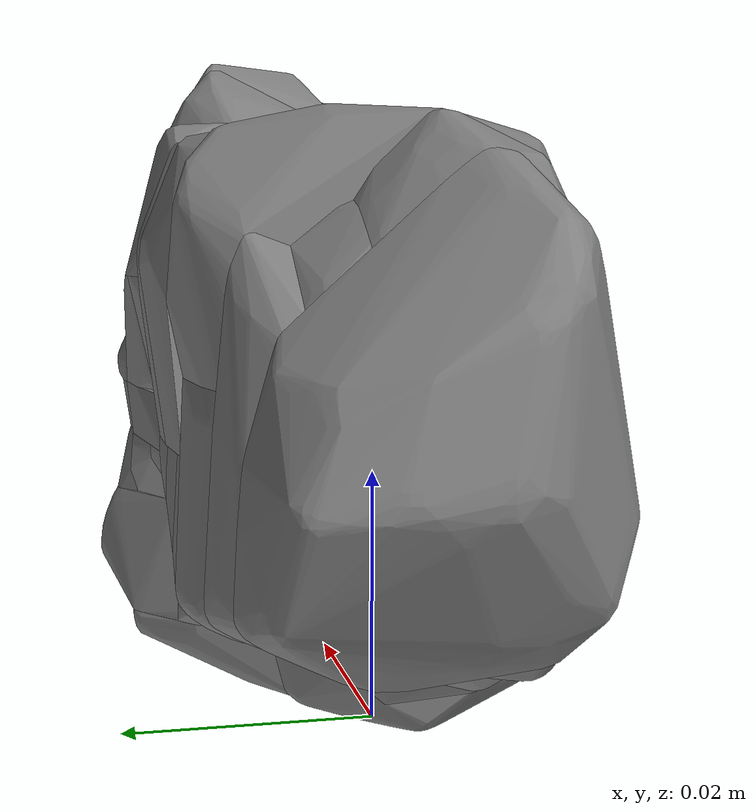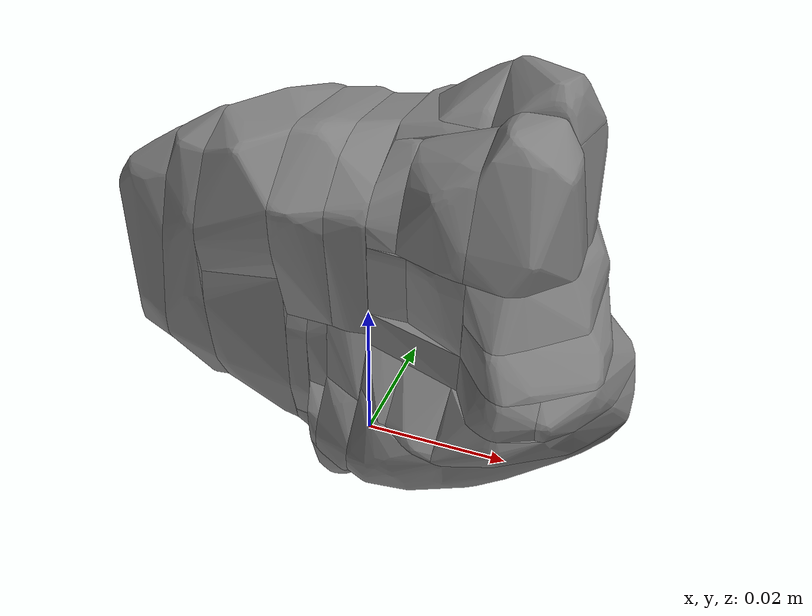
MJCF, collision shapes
<?xml version="1.0" ?>
<!-- @bbox dx=0.0700 dy=0.0408 dz=0.0532 -->
<mujoco model="mineral_galena_pbs">
  <asset>
    <texture type="2d" name="Galena" file="Galena.png"/>
    <material name="Galena" texture="Galena" specular="0.4000000000000001" shininess="0.001"/>
    <mesh file="mineral_galena_pbs.obj" scale="0.04052298501338446 0.04052298501338446 0.04052298501338446"/>
    <mesh file="mineral_galena_pbs/mineral_galena_pbs_collision_0.obj" scale="0.04052298501338446 0.04052298501338446 0.04052298501338446"/>
    <mesh file="mineral_galena_pbs/mineral_galena_pbs_collision_1.obj" scale="0.04052298501338446 0.04052298501338446 0.04052298501338446"/>
    <mesh file="mineral_galena_pbs/mineral_galena_pbs_collision_2.obj" scale="0.04052298501338446 0.04052298501338446 0.04052298501338446"/>
    <mesh file="mineral_galena_pbs/mineral_galena_pbs_collision_3.obj" scale="0.04052298501338446 0.04052298501338446 0.04052298501338446"/>
    <mesh file="mineral_galena_pbs/mineral_galena_pbs_collision_4.obj" scale="0.04052298501338446 0.04052298501338446 0.04052298501338446"/>
    <mesh file="mineral_galena_pbs/mineral_galena_pbs_collision_5.obj" scale="0.04052298501338446 0.04052298501338446 0.04052298501338446"/>
    <mesh file="mineral_galena_pbs/mineral_galena_pbs_collision_6.obj" scale="0.04052298501338446 0.04052298501338446 0.04052298501338446"/>
    <mesh file="mineral_galena_pbs/mineral_galena_pbs_collision_7.obj" scale="0.04052298501338446 0.04052298501338446 0.04052298501338446"/>
    <mesh file="mineral_galena_pbs/mineral_galena_pbs_collision_8.obj" scale="0.04052298501338446 0.04052298501338446 0.04052298501338446"/>
    <mesh file="mineral_galena_pbs/mineral_galena_pbs_collision_9.obj" scale="0.04052298501338446 0.04052298501338446 0.04052298501338446"/>
    <mesh file="mineral_galena_pbs/mineral_galena_pbs_collision_10.obj" scale="0.04052298501338446 0.04052298501338446 0.04052298501338446"/>
    <mesh file="mineral_galena_pbs/mineral_galena_pbs_collision_11.obj" scale="0.04052298501338446 0.04052298501338446 0.04052298501338446"/>
    <mesh file="mineral_galena_pbs/mineral_galena_pbs_collision_12.obj" scale="0.04052298501338446 0.04052298501338446 0.04052298501338446"/>
    <mesh file="mineral_galena_pbs/mineral_galena_pbs_collision_13.obj" scale="0.04052298501338446 0.04052298501338446 0.04052298501338446"/>
    <mesh file="mineral_galena_pbs/mineral_galena_pbs_collision_14.obj" scale="0.04052298501338446 0.04052298501338446 0.04052298501338446"/>
    <mesh file="mineral_galena_pbs/mineral_galena_pbs_collision_15.obj" scale="0.04052298501338446 0.04052298501338446 0.04052298501338446"/>
    <mesh file="mineral_galena_pbs/mineral_galena_pbs_collision_16.obj" scale="0.04052298501338446 0.04052298501338446 0.04052298501338446"/>
    <mesh file="mineral_galena_pbs/mineral_galena_pbs_collision_17.obj" scale="0.04052298501338446 0.04052298501338446 0.04052298501338446"/>
    <mesh file="mineral_galena_pbs/mineral_galena_pbs_collision_18.obj" scale="0.04052298501338446 0.04052298501338446 0.04052298501338446"/>
    <mesh file="mineral_galena_pbs/mineral_galena_pbs_collision_19.obj" scale="0.04052298501338446 0.04052298501338446 0.04052298501338446"/>
    <mesh file="mineral_galena_pbs/mineral_galena_pbs_collision_20.obj" scale="0.04052298501338446 0.04052298501338446 0.04052298501338446"/>
    <mesh file="mineral_galena_pbs/mineral_galena_pbs_collision_21.obj" scale="0.04052298501338446 0.04052298501338446 0.04052298501338446"/>
    <mesh file="mineral_galena_pbs/mineral_galena_pbs_collision_22.obj" scale="0.04052298501338446 0.04052298501338446 0.04052298501338446"/>
    <mesh file="mineral_galena_pbs/mineral_galena_pbs_collision_23.obj" scale="0.04052298501338446 0.04052298501338446 0.04052298501338446"/>
    <mesh file="mineral_galena_pbs/mineral_galena_pbs_collision_24.obj" scale="0.04052298501338446 0.04052298501338446 0.04052298501338446"/>
    <mesh file="mineral_galena_pbs/mineral_galena_pbs_collision_25.obj" scale="0.04052298501338446 0.04052298501338446 0.04052298501338446"/>
    <mesh file="mineral_galena_pbs/mineral_galena_pbs_collision_26.obj" scale="0.04052298501338446 0.04052298501338446 0.04052298501338446"/>
    <mesh file="mineral_galena_pbs/mineral_galena_pbs_collision_27.obj" scale="0.04052298501338446 0.04052298501338446 0.04052298501338446"/>
    <mesh file="mineral_galena_pbs/mineral_galena_pbs_collision_28.obj" scale="0.04052298501338446 0.04052298501338446 0.04052298501338446"/>
    <mesh file="mineral_galena_pbs/mineral_galena_pbs_collision_29.obj" scale="0.04052298501338446 0.04052298501338446 0.04052298501338446"/>
    <mesh file="mineral_galena_pbs/mineral_galena_pbs_collision_30.obj" scale="0.04052298501338446 0.04052298501338446 0.04052298501338446"/>
    <mesh file="mineral_galena_pbs/mineral_galena_pbs_collision_31.obj" scale="0.04052298501338446 0.04052298501338446 0.04052298501338446"/>
    <mesh file="mineral_galena_pbs/mineral_galena_pbs_collision_32.obj" scale="0.04052298501338446 0.04052298501338446 0.04052298501338446"/>
    <mesh file="mineral_galena_pbs/mineral_galena_pbs_collision_33.obj" scale="0.04052298501338446 0.04052298501338446 0.04052298501338446"/>
    <mesh file="mineral_galena_pbs/mineral_galena_pbs_collision_34.obj" scale="0.04052298501338446 0.04052298501338446 0.04052298501338446"/>
    <mesh file="mineral_galena_pbs/mineral_galena_pbs_collision_35.obj" scale="0.04052298501338446 0.04052298501338446 0.04052298501338446"/>
  </asset>
  <worldbody>
    <body name="mineral_galena_pbs">
      <inertial pos="0 0 0.026619" mass="0.02" diaginertia="0.0008 0.0008 0.0005"/>
      <geom material="Galena" mesh="mineral_galena_pbs" class="visual"/>
      <geom mesh="mineral_galena_pbs_collision_0"  class="collision"/>
      <geom mesh="mineral_galena_pbs_collision_1"  class="collision"/>
      <geom mesh="mineral_galena_pbs_collision_2"  class="collision"/>
      <geom mesh="mineral_galena_pbs_collision_3"  class="collision"/>
      <geom mesh="mineral_galena_pbs_collision_4"  class="collision"/>
      <geom mesh="mineral_galena_pbs_collision_5"  class="collision"/>
      <geom mesh="mineral_galena_pbs_collision_6"  class="collision"/>
      <geom mesh="mineral_galena_pbs_collision_7"  class="collision"/>
      <geom mesh="mineral_galena_pbs_collision_8"  class="collision"/>
      <geom mesh="mineral_galena_pbs_collision_9"  class="collision"/>
      <geom mesh="mineral_galena_pbs_collision_10"  class="collision"/>
      <geom mesh="mineral_galena_pbs_collision_11"  class="collision"/>
      <geom mesh="mineral_galena_pbs_collision_12"  class="collision"/>
      <geom mesh="mineral_galena_pbs_collision_13"  class="collision"/>
      <geom mesh="mineral_galena_pbs_collision_14"  class="collision"/>
      <geom mesh="mineral_galena_pbs_collision_15"  class="collision"/>
      <geom mesh="mineral_galena_pbs_collision_16"  class="collision"/>
      <geom mesh="mineral_galena_pbs_collision_17"  class="collision"/>
      <geom mesh="mineral_galena_pbs_collision_18"  class="collision"/>
      <geom mesh="mineral_galena_pbs_collision_19"  class="collision"/>
      <geom mesh="mineral_galena_pbs_collision_20"  class="collision"/>
      <geom mesh="mineral_galena_pbs_collision_21"  class="collision"/>
      <geom mesh="mineral_galena_pbs_collision_22"  class="collision"/>
      <geom mesh="mineral_galena_pbs_collision_23"  class="collision"/>
      <geom mesh="mineral_galena_pbs_collision_24"  class="collision"/>
      <geom mesh="mineral_galena_pbs_collision_25"  class="collision"/>
      <geom mesh="mineral_galena_pbs_collision_26"  class="collision"/>
      <geom mesh="mineral_galena_pbs_collision_27"  class="collision"/>
      <geom mesh="mineral_galena_pbs_collision_28"  class="collision"/>
      <geom mesh="mineral_galena_pbs_collision_29"  class="collision"/>
      <geom mesh="mineral_galena_pbs_collision_30"  class="collision"/>
      <geom mesh="mineral_galena_pbs_collision_31"  class="collision"/>
      <geom mesh="mineral_galena_pbs_collision_32"  class="collision"/>
      <geom mesh="mineral_galena_pbs_collision_33"  class="collision"/>
      <geom mesh="mineral_galena_pbs_collision_34"  class="collision"/>
      <geom mesh="mineral_galena_pbs_collision_35"  class="collision"/>
          <site class="grasppoint" group="4" pos="0.0000 0.0000 0.0266"/>
      <site class="boundpoint" group="3" name="bnd_p0"   pos="-0.0350 -0.0204 0.0000"/>
      <site class="boundpoint" group="3" name="bnd_px"   pos="0.0350 -0.0204 0.0000"/>
      <site class="boundpoint" group="3" name="bnd_py"   pos="-0.0350 0.0204 0.0000"/>
      <site class="boundpoint" group="3" name="bnd_pxy"  pos="0.0350 0.0204 0.0000"/>
      <site class="boundpoint" group="3" name="bnd_pz"   pos="-0.0350 -0.0204 0.0532"/>
      <site class="boundpoint" group="3" name="bnd_pxz"  pos="0.0350 -0.0204 0.0532"/>
      <site class="boundpoint" group="3" name="bnd_pyz"  pos="-0.0350 0.0204 0.0532"/>
      <site class="boundpoint" group="3" name="bnd_pxyz" pos="0.0350 0.0204 0.0532"/>
      <site name="top_site" pos="0 0 0.0532" size="0.01" rgba="1 0 0 0"/>
      <site name="bottom_site" pos="0 0 0" size="0.01" rgba="0 1 0 0"/>
</body>
  </worldbody>
  <compiler boundmass="0.015" boundinertia="1e-05" angle="radian"/>
  <default>
    <default class="visual">
      <geom group="2" type="mesh" contype="0" conaffinity="0" density="50"/>
    </default>
    <default class="collision">
      <geom group="3" type="mesh" density="50" friction="1.5 0.1 0.1" solimp="0.9 0.95 0.001" solref="0.02 1"/>
    </default>
    <default class="grasppoint">
      <site type="sphere" size="0.005" group="4" rgba="0 0 1 1"/>
    </default>
        <default class="boundpoint"><site type="sphere" size="0.01" group="3" rgba="1 0 0 1"/></default>
      <default class="placepoint"><site type="sphere" size="0.01" group="2" rgba="0 0 1 0"/></default>
</default>
</mujoco>
